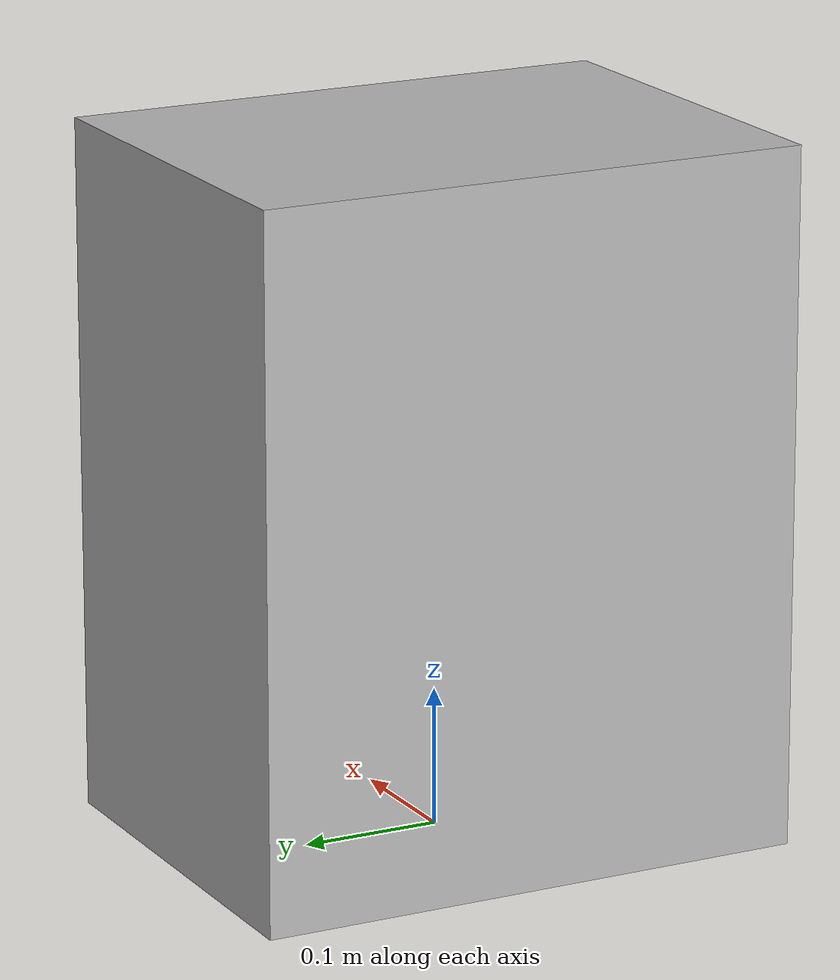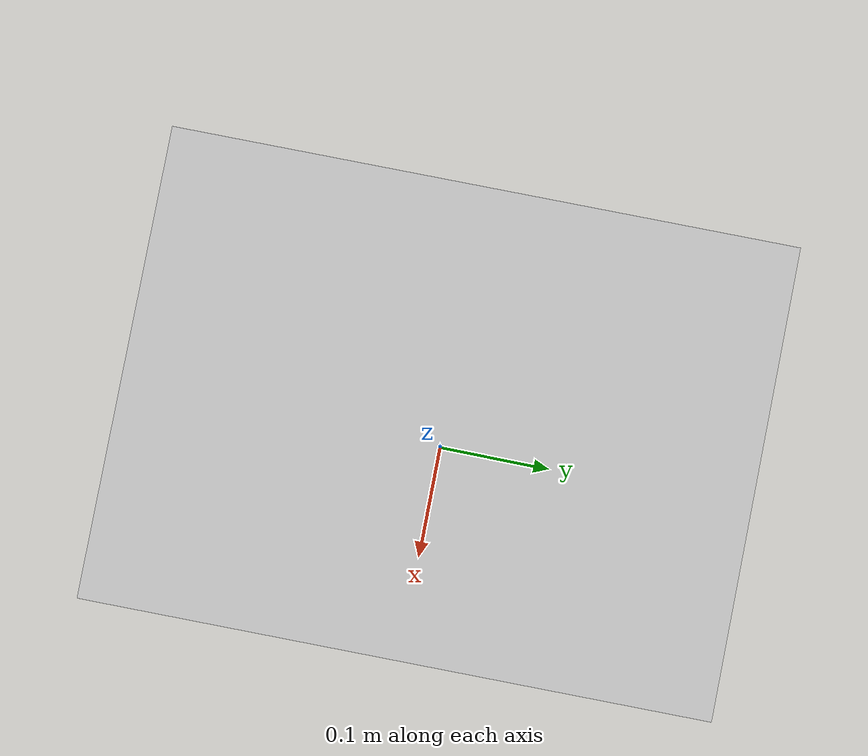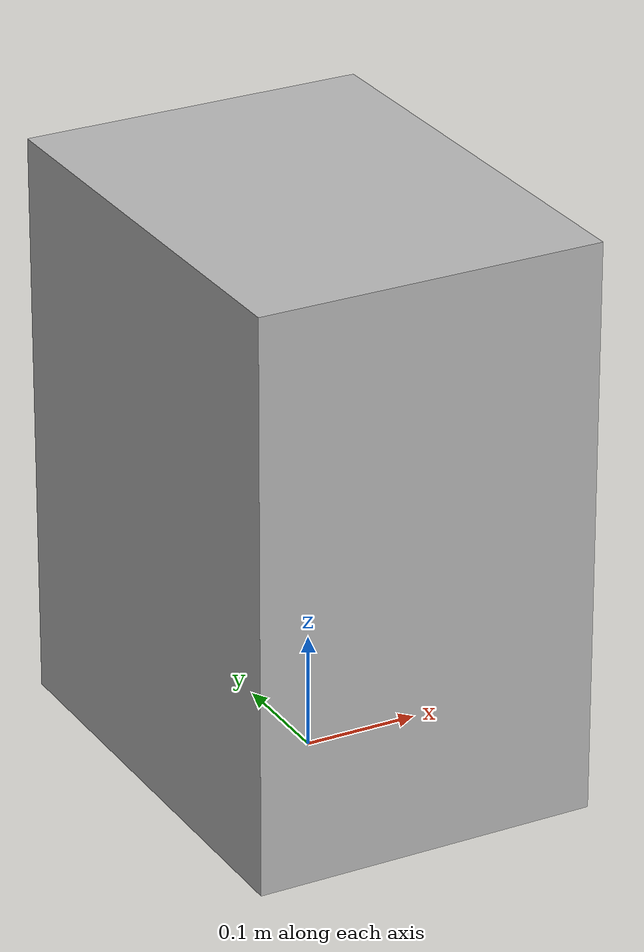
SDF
<?xml version="1.0"?>
<sdf version="1.5">
  <model name="whiskeye_black_box">
    <static>true</static>
    <link name="main">
      <visual name="visual">
        <pose>0 0 0.25 0 0 0</pose>
        <geometry>
          <box>
            <size>0.3 0.4 0.5</size>
          </box>
        </geometry>
      </visual>
      <collision name="collision">
        <pose>0 0 0.25 0 0 0</pose>
          <geometry>
            <box>
              <size>0.3 0.4 0.5</size>
            </box>
          </geometry>
          <surface>
            <friction>
              <ode>
                <mu>0.1</mu>
                <mu2>0.1</mu2>
              </ode>
            </friction>
          </surface>
      </collision>
    </link>
  </model>
</sdf>
